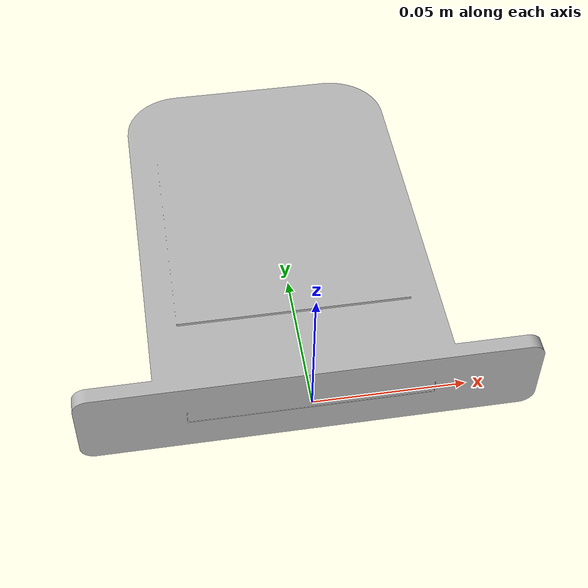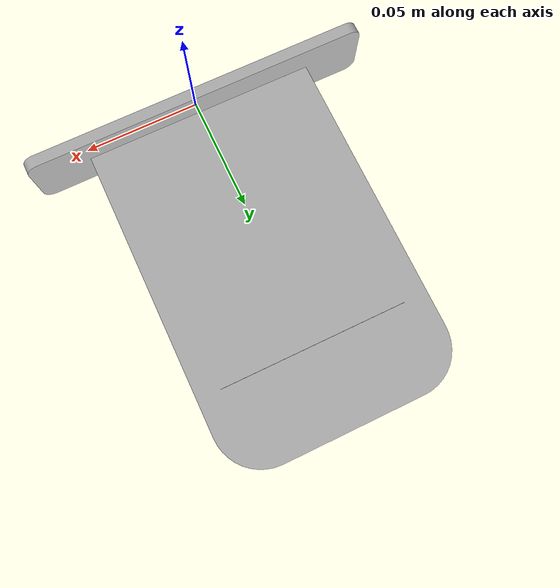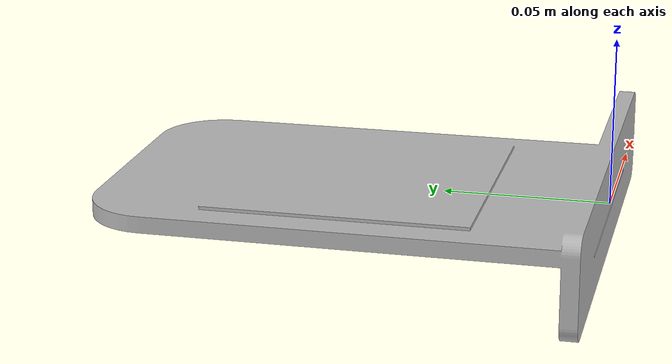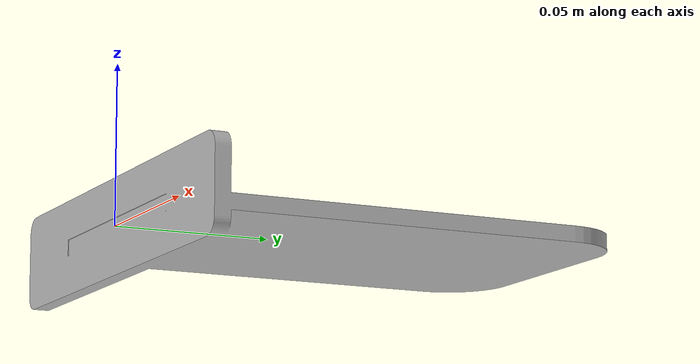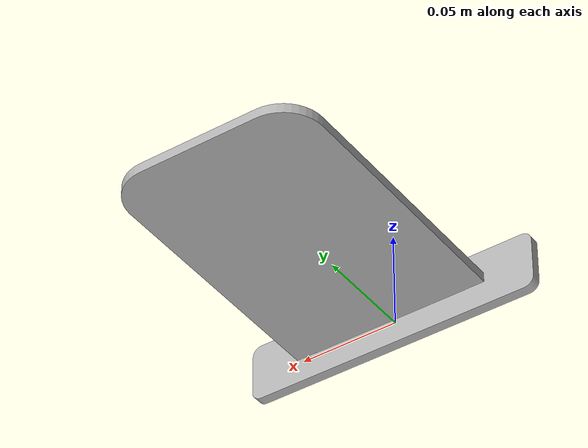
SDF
<?xml version="1.0" ?>
<sdf version="1.6">
  <model name="pancarte">
    <static>true</static>
    <link name="link">
      <collision name="collision">
      <pose>0 0.075 0 0 0 0 </pose>
        <geometry>
          <box>
	          <size>0.15 0.15 0.03</size>
          </box>
        </geometry>
      </collision>
      <visual name="visual">
        <geometry>
          <mesh>
	          <scale>0.001 0.001 0.001</scale>
            <uri>model://pancarte/meshes/PANCARTE_QR.stl</uri>
          </mesh>
        </geometry>
      </visual>
    </link>
  </model>
</sdf>
